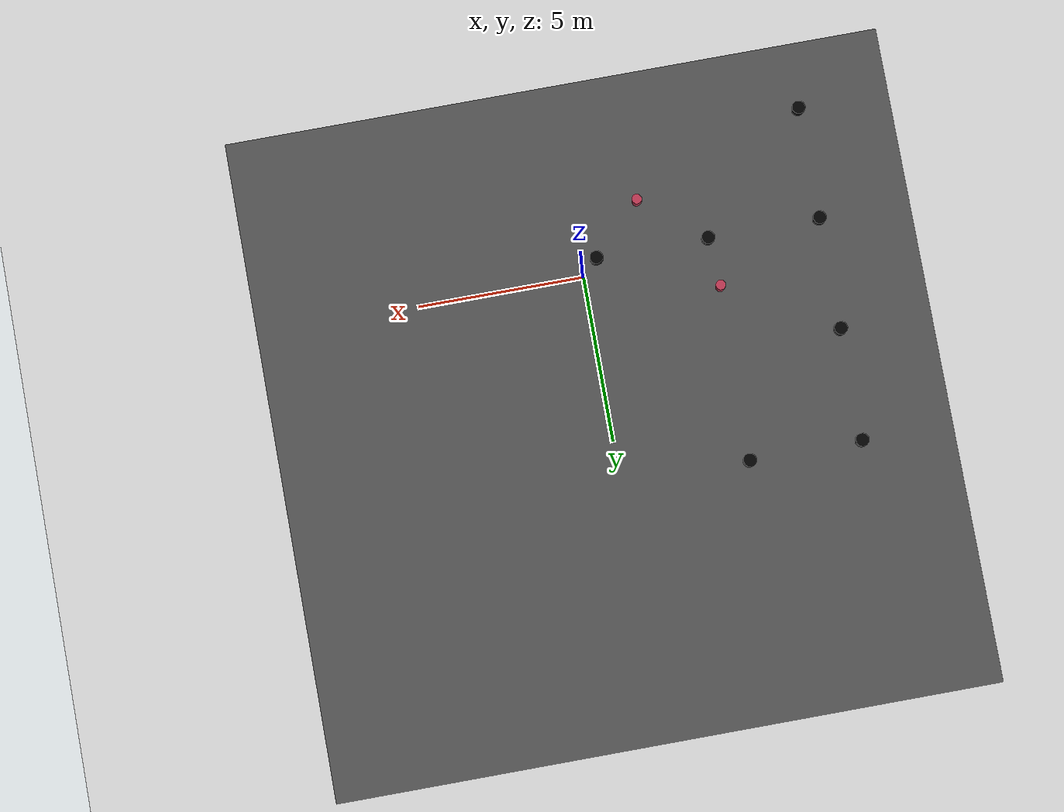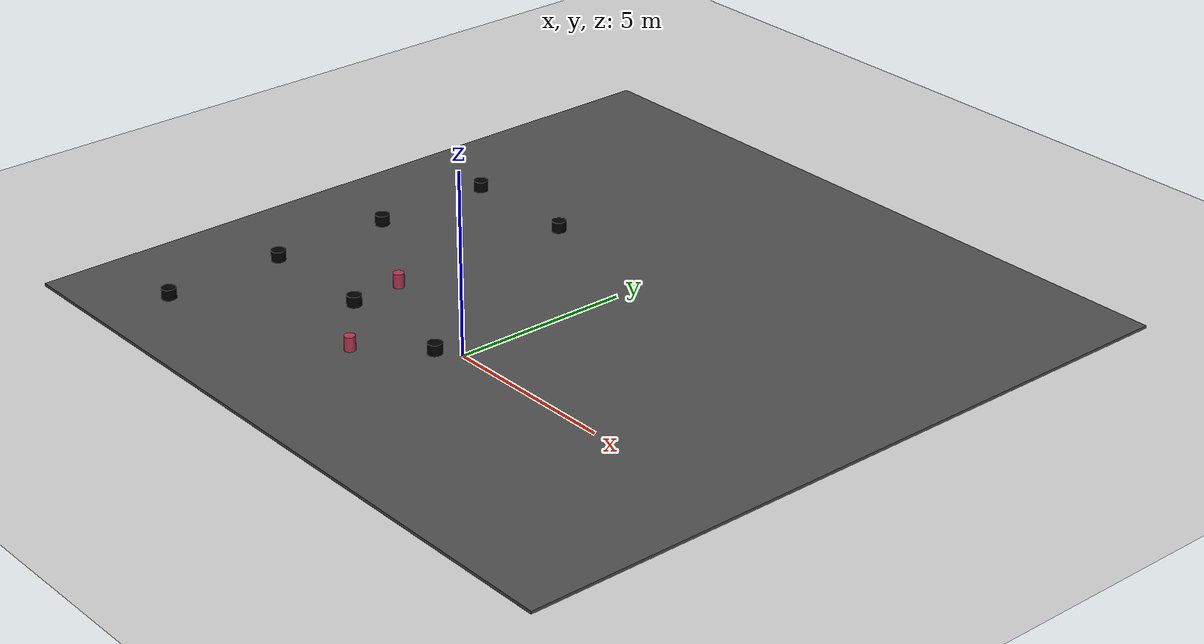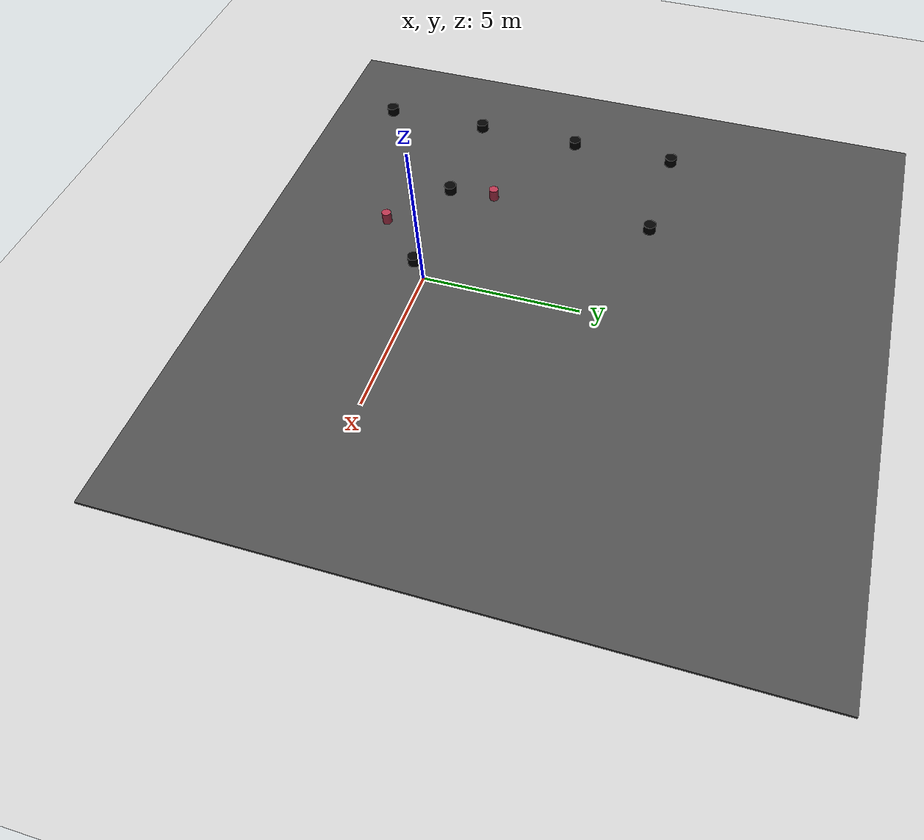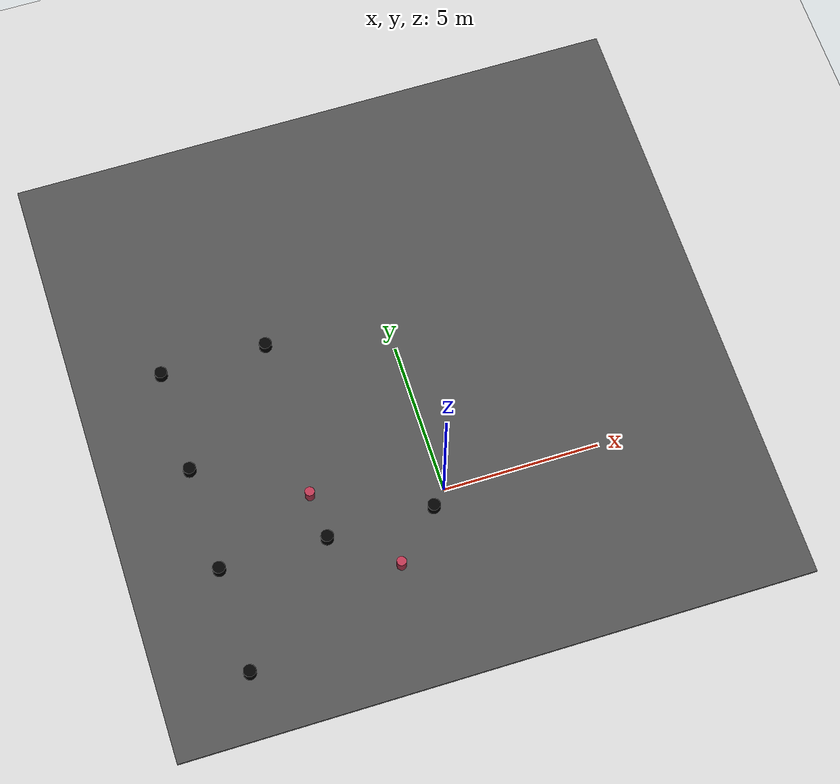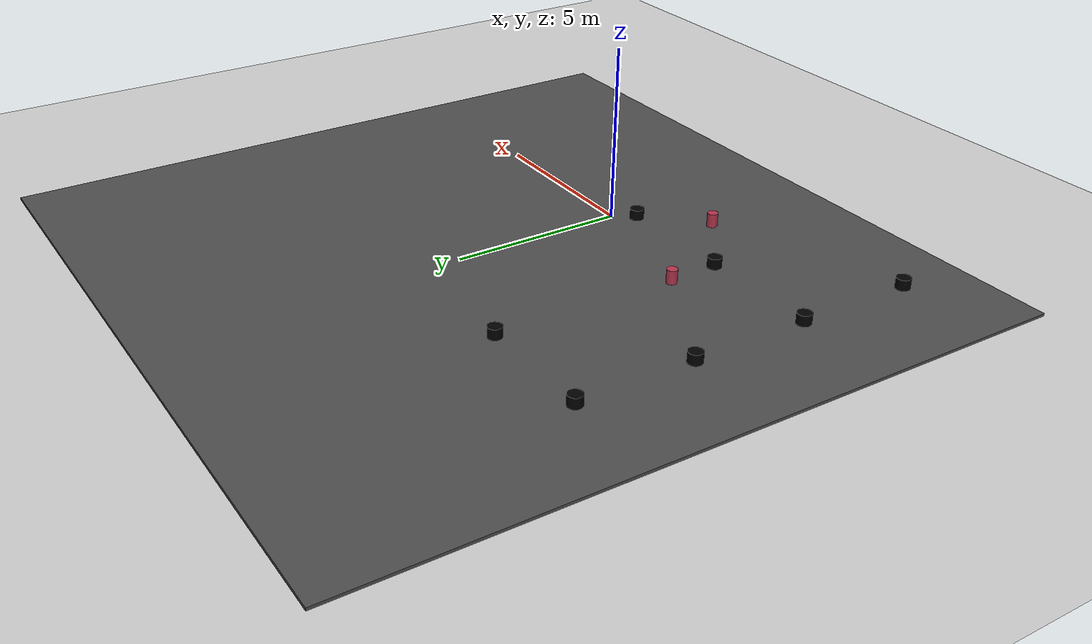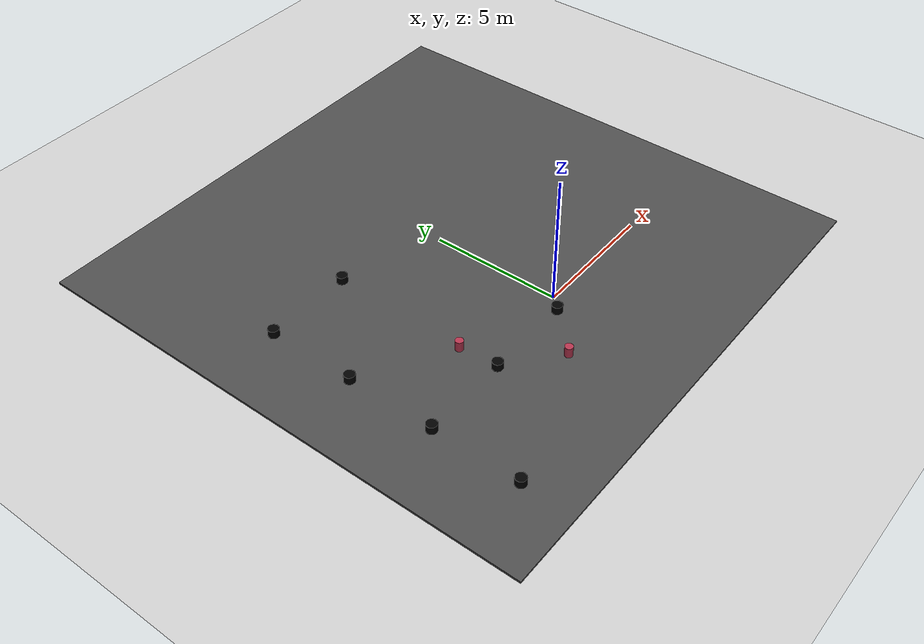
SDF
<sdf version="1.6">
 <world name="default">
  <light name="sun" type="directional">
   <pose>0 0 10 0 -0 0</pose>
   <diffuse>0.8 0.8 0.8 1</diffuse>
   <specular>0.2 0.2 0.2 1</specular>
   <attenuation>
    <range>1000</range>
    <constant>0.9</constant>
    <linear>0.01</linear>
    <quadratic>0.001</quadratic>
   </attenuation>
   <direction>-0.5 0.1 -0.9</direction>
  </light>
  <model name="ground_plane">
   <static>1</static>
   <link name="link">
    <collision name="collision">
     <geometry><plane><normal>0 0 1</normal><size>100 100</size></plane></geometry>
     <surface><friction><ode><mu>100</mu><mu2>50</mu2></ode></friction></surface>
    </collision>
    <visual name="visual">
     <cast_shadows>0</cast_shadows>
     <geometry><plane><normal>0 0 1</normal><size>100 100</size></plane></geometry>
     <material>
      <script><uri>file://media/materials/scripts/gazebo.material</uri><name>Gazebo/Grey</name></script>
     </material>
    </visual>
   </link>
  </model>
  <gravity>0 0 -9.8</gravity>
  <magnetic_field>6e-06 2.3e-05 -4.2e-05</magnetic_field>
  <atmosphere type="adiabatic"/>
  <physics name="default_physics" default="0" type="ode">
   <max_step_size>0.001</max_step_size>
   <real_time_factor>1</real_time_factor>
   <real_time_update_rate>1000</real_time_update_rate>
  </physics>
  <scene><ambient>0.4 0.4 0.4 1</ambient><background>0.7 0.7 0.7 1</background><shadows>1</shadows></scene>
  <spherical_coordinates>
   <surface_model>EARTH_WGS84</surface_model>
   <latitude_deg>0</latitude_deg>
   <longitude_deg>0</longitude_deg>
   <elevation>0</elevation>
   <heading_deg>0</heading_deg>
  </spherical_coordinates>
  <model name="asphalt_plane">
   <static>1</static>
   <link name="link">
    <collision name="collision"><geometry><box><size>20 20 0.1</size></box></geometry></collision>
    <visual name="visual">
     <cast_shadows>0</cast_shadows>
     <geometry><box><size>20 20 0.1</size></box></geometry>
     <material>
      <script>
       <uri>model://asphalt_plane/materials/scripts</uri>
       <uri>model://asphalt_plane/materials/textures</uri>
       <name>vrc/asphalt</name>
      </script>
     </material>
    </visual>
   </link>
   <pose>-0.078978 4.07971 0 0 -0 0</pose>
  </model>
  <model name="pole1">
   <static>true</static>
   <link name="chassis">
    <pose>-0.5 -0.5 .1 0 0 0</pose>
    <collision name="collision">
     <geometry><cylinder><radius>0.2</radius><length>0.5</length></cylinder></geometry>
    </collision>
    <visual name="visual">
     <geometry><cylinder><radius>0.2</radius><length>0.5</length></cylinder></geometry>
     <material>
      <ambient>0 0 0 1</ambient>
      <diffuse>0 0 0 1</diffuse>
      <specular>0 0 0 0</specular>
      <emissive>0 1 0 1</emissive>
     </material>
    </visual>
   </link>
  </model>
  <model name="pole2">
   <static>true</static>
   <link name="chassis">
    <pose>-3.9 -0.5 .1 0 0 0</pose>
    <collision name="collision">
     <geometry><cylinder><radius>0.2</radius><length>0.5</length></cylinder></geometry>
    </collision>
    <visual name="visual">
     <geometry><cylinder><radius>0.2</radius><length>0.5</length></cylinder></geometry>
     <material>
      <ambient>0 0 0 1</ambient>
      <diffuse>0 0 0 1</diffuse>
      <specular>0 0 0 0</specular>
      <emissive>0 1 0 1</emissive>
     </material>
    </visual>
   </link>
  </model>
  <model name="pole3">
   <static>true</static>
   <link name="chassis">
    <pose>-7.3 -0.5 .1 0 0 0</pose>
    <collision name="collision">
     <geometry><cylinder><radius>0.2</radius><length>0.5</length></cylinder></geometry>
    </collision>
    <visual name="visual">
     <geometry><cylinder><radius>0.2</radius><length>0.5</length></cylinder></geometry>
     <material>
      <ambient>0 0 0 1</ambient>
      <diffuse>0 0 0 1</diffuse>
      <specular>0 0 0 0</specular>
      <emissive>0 1 0 1</emissive>
     </material>
    </visual>
   </link>
  </model>
  <model name="pole4">
   <static>true</static>
   <link name="chassis">
    <pose>-7.3 -3.9 .1 0 0 0</pose>
    <collision name="collision">
     <geometry><cylinder><radius>0.2</radius><length>0.5</length></cylinder></geometry>
    </collision>
    <visual name="visual">
     <geometry><cylinder><radius>0.2</radius><length>0.5</length></cylinder></geometry>
     <material>
      <ambient>0 0 0 1</ambient>
      <diffuse>0 0 0 1</diffuse>
      <specular>0 0 0 0</specular>
      <emissive>0 1 0 1</emissive>
     </material>
    </visual>
   </link>
  </model>
  <model name="pole5">
   <static>true</static>
   <link name="chassis">
    <pose>-7.3 2.9 .1 0 0 0</pose>
    <collision name="collision">
     <geometry><cylinder><radius>0.2</radius><length>0.5</length></cylinder></geometry>
    </collision>
    <visual name="visual">
     <geometry><cylinder><radius>0.2</radius><length>0.5</length></cylinder></geometry>
     <material>
      <ambient>0 0 0 1</ambient>
      <diffuse>0 0 0 1</diffuse>
      <specular>0 0 0 0</specular>
      <emissive>0 1 0 1</emissive>
     </material>
    </visual>
   </link>
  </model>
  <model name="pole6">
   <static>true</static>
   <link name="chassis">
    <pose>-7.3 6.3 .1 0 0 0</pose>
    <collision name="collision">
     <geometry><cylinder><radius>0.2</radius><length>0.5</length></cylinder></geometry>
    </collision>
    <visual name="visual">
     <geometry><cylinder><radius>0.2</radius><length>0.5</length></cylinder></geometry>
     <material>
      <ambient>0 0 0 1</ambient>
      <diffuse>0 0 0 1</diffuse>
      <specular>0 0 0 0</specular>
      <emissive>0 1 0 1</emissive>
     </material>
    </visual>
   </link>
  </model>
  <model name="pole7">
   <static>true</static>
   <link name="chassis">
    <pose>-3.9 6.3 .1 0 0 0</pose>
    <collision name="collision">
     <geometry><cylinder><radius>0.2</radius><length>0.5</length></cylinder></geometry>
    </collision>
    <visual name="visual">
     <geometry><cylinder><radius>0.2</radius><length>0.5</length></cylinder></geometry>
     <material>
      <ambient>0 0 0 1</ambient>
      <diffuse>0 0 0 1</diffuse>
      <specular>0 0 0 0</specular>
      <emissive>0 1 0 1</emissive>
     </material>
    </visual>
   </link>
  </model>
  <model name="Tree1">
   <static>true</static>
   <link name="chassis">
    <pose>-2 -2 .1 0 0 0</pose>
    <collision name="collision">
     <geometry><cylinder><radius>0.15</radius><length>0.7</length></cylinder></geometry>
    </collision>
    <visual name="visual">
     <geometry><cylinder><radius>0.15</radius><length>0.7</length></cylinder></geometry>
     <material><ambient>0.7 0.2 0.3 1</ambient></material>
    </visual>
   </link>
  </model>
  <model name="Tree2">
   <static>true</static>
   <link name="chassis">
    <pose>-4 1 .1 0 0 0</pose>
    <collision name="collision">
     <geometry><cylinder><radius>0.15</radius><length>0.7</length></cylinder></geometry>
    </collision>
    <visual name="visual">
     <geometry><cylinder><radius>0.15</radius><length>0.7</length></cylinder></geometry>
     <material><ambient>0.7 0.2 0.3 1</ambient></material>
    </visual>
   </link>
  </model>
 </world>
</sdf>
